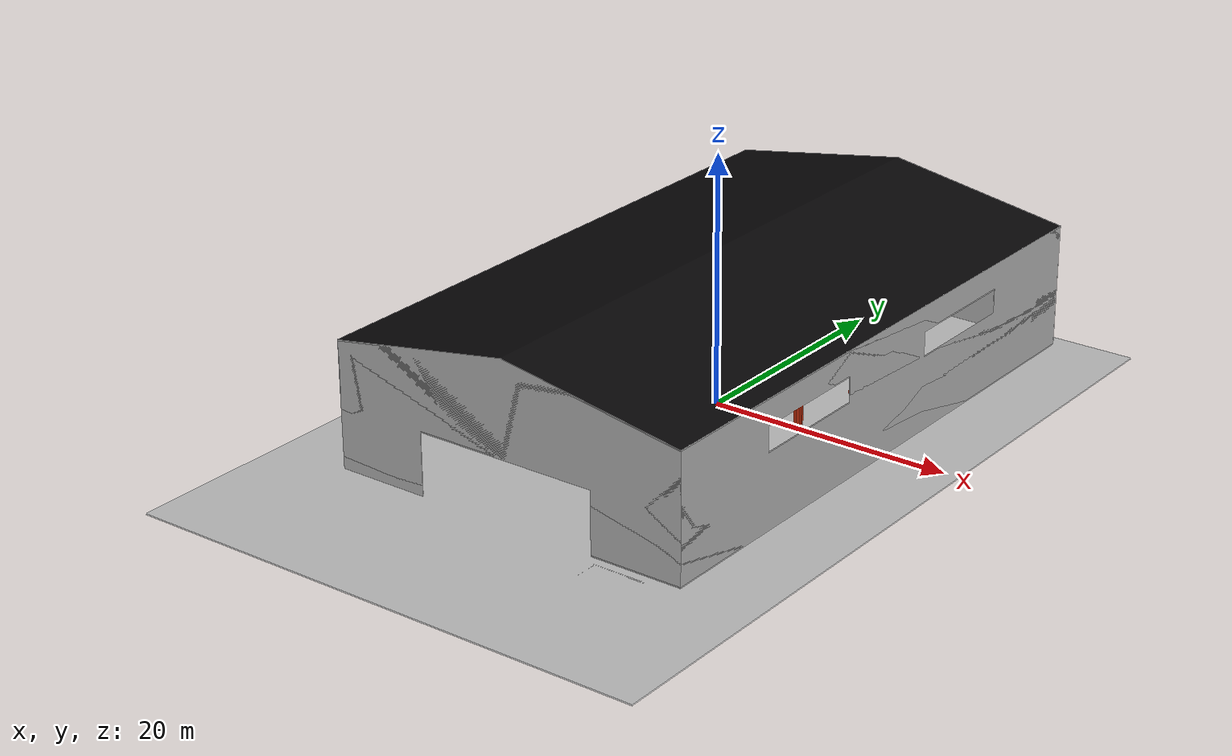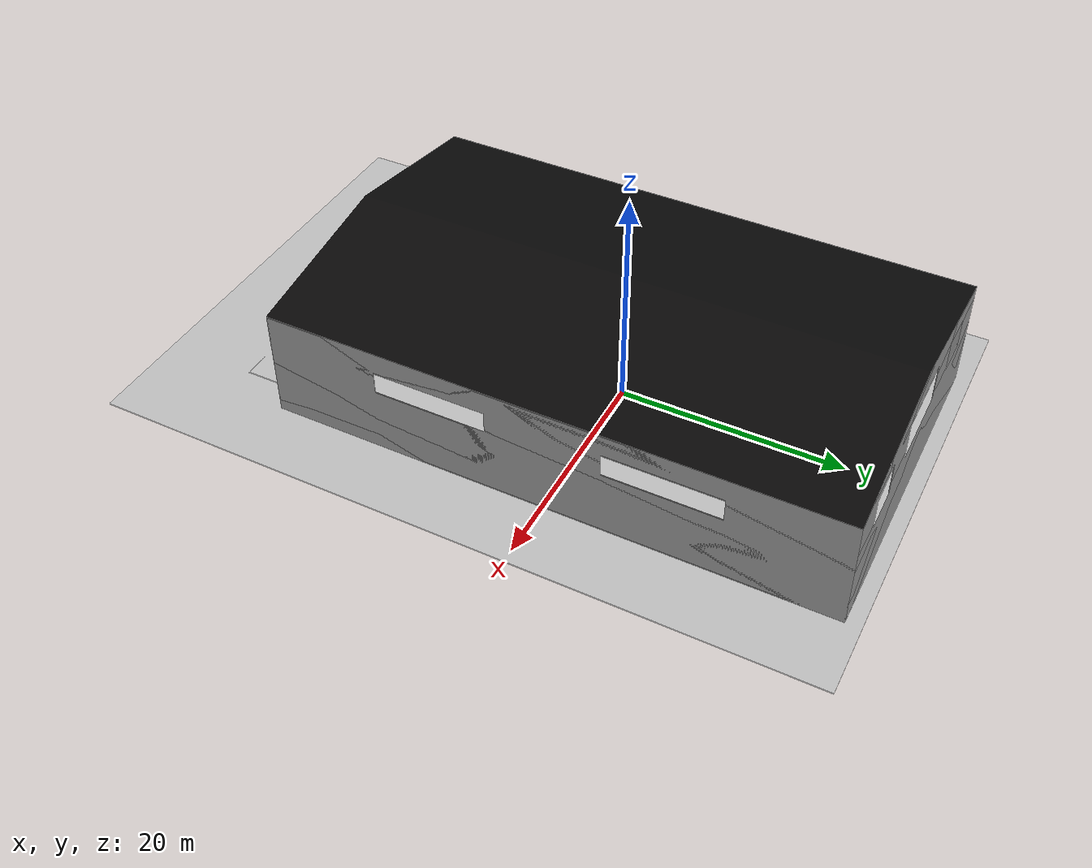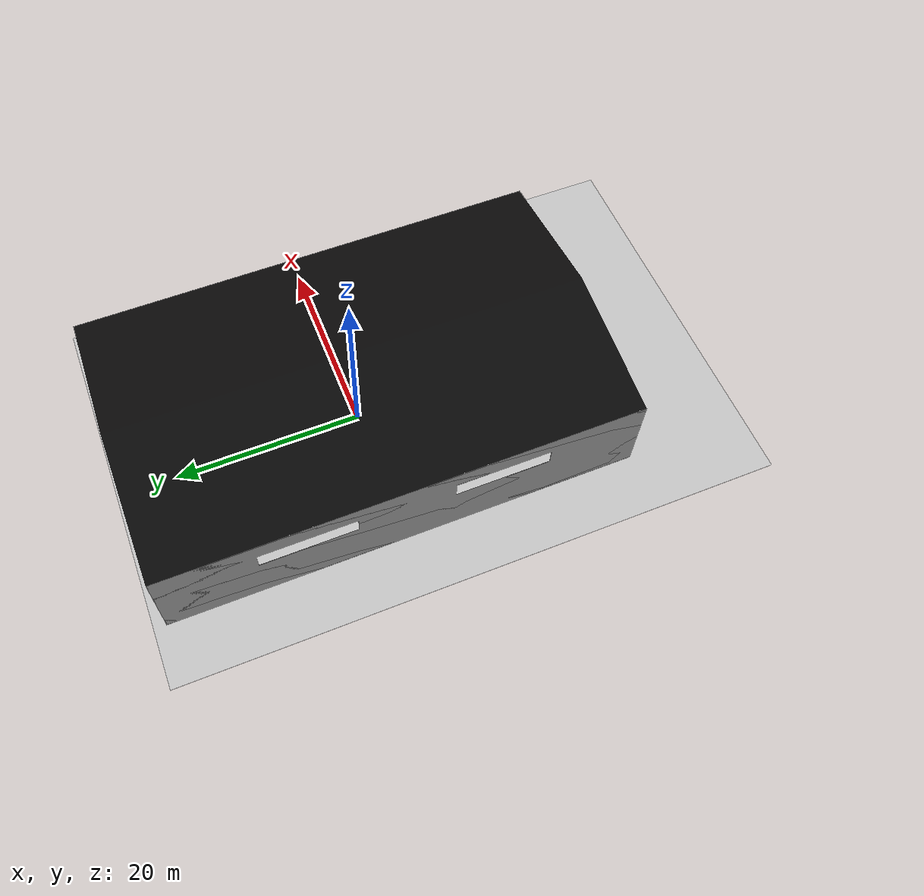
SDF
<?xml version='1.0' encoding='ASCII'?>
<sdf version='1.7'>
  <world name='world_demo'>
    <gravity>0 0 -9.8</gravity>
    <physics type='ode'>
      <max_step_size>0.004</max_step_size>
      <real_time_factor>1</real_time_factor>
      <max_contacts>10</max_contacts>
    </physics>
    <plugin name='gz::sim::systems::Physics' filename='gz-sim-physics-system'/>
    <plugin name='gz::sim::systems::UserCommands' filename='gz-sim-user-commands-system'/>
    <plugin name='gz::sim::systems::SceneBroadcaster' filename='gz-sim-scene-broadcaster-system'/>
    <plugin name='gz::sim::systems::Imu' filename='gz-sim-imu-system'/>
    <plugin name='gz::sim::systems::Sensors' filename='gz-sim-sensors-system'>
      <render_engine>ogre2</render_engine>
    </plugin>
    <scene>
      <ambient>1 1 1 1</ambient>
      <background>0.3 0.7 0.9 1</background>
      <shadows>0</shadows>
      <grid>false</grid>
    </scene>

    <light type="directional" name="sun">
      <cast_shadows>0</cast_shadows>
      <pose>-5 -3 10 0 0 0</pose>
      <diffuse>1 1 1 1</diffuse>
      <specular>1 1 1 1</specular>
      <direction>0 0 -1</direction>
    </light>

    <model name='ground_plane'>
      <static>true</static>
      <link name='link'>
        <collision name='collision'>
          <geometry>
            <plane>
              <normal>0.0 0.0 1</normal>
              <size>1 1</size>
            </plane>
          </geometry>
        </collision>
      </link>
      <pose>0 0 0 0 0 0</pose>
    </model>

    <include>
      <uri>model://warehouse</uri>
      <name>warehouse</name>
      <pose>0 0 -0.09 0 0 0</pose>
    </include>

    <model name="overhead_camera">
      <static>true</static>
      <pose>0 0 38 0 1.5707963 0</pose>
      <link name="link">
        <sensor name="overhead" type="camera">
          <topic>/overhead/image</topic>
          <update_rate>15</update_rate>
          <camera>
            <horizontal_fov>1.3</horizontal_fov>
            <image><width>900</width><height>900</height><format>R8G8B8</format></image>
            <clip><near>0.1</near><far>80.0</far></clip>
          </camera>
          <always_on>1</always_on>
          <visualize>false</visualize>
        </sensor>
      </link>
    </model>

  </world>
</sdf>

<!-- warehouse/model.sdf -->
<sdf version="1.8">
    <model name="warehouse">
        <pose>0 0 0 0 0 0</pose>
        <self_collide>false</self_collide>
        <static>true</static>
        <link name="warehouse_base">
            <pose>0 0 0 0 0 0</pose>
            <collision name="floor_collision">
                <pose>0 0 0.049 0 0 0</pose>
                <geometry>
                    <box><size>30 50 0.1</size></box>
                </geometry>
            </collision>
            <collision name="wall_north_collision">
                <pose>0 25 6.35 0 0 0</pose>
                <geometry>
                    <box><size>31 0.5 12.5</size></box>
                </geometry>
            </collision>
            <collision name="wall_south_collision">
                <pose>0 -25 6.35 0 0 0</pose>
                <geometry>
                    <box><size>31 0.5 12.5</size></box>
                </geometry>
            </collision>
            <collision name="wall_east_collision">
                <pose>15 0 6.35 0 0 0</pose>
                <geometry>
                    <box><size>0.5 51 12.5</size></box>
                </geometry>
            </collision>
            <collision name="wall_west_collision">
                <pose>-15 0 6.35 0 0 0</pose>
                <geometry>
                    <box><size>0.5 51 12.5</size></box>
                </geometry>
            </collision>
            <visual name="warehouse_visual">
                <pose>0 0 0 0 0 0</pose>
                <geometry>
                    <mesh>
                        <scale>1 1 1</scale>
                        <uri>meshes/warehouse.dae</uri>
                    </mesh>
                </geometry>
            </visual>
            <visual name="drop_area_visual">
                <pose>0 0 0.101 0 0 0</pose>
                <geometry>
                    <mesh>
                        <scale>1 1 1</scale>
                        <uri>meshes/warehouse.dae</uri>
                        <submesh>
                            <name>drop1</name>
                            <center>true</center>
                        </submesh>
                    </mesh>
                </geometry>
            </visual>
        </link>
    </model>
</sdf>
